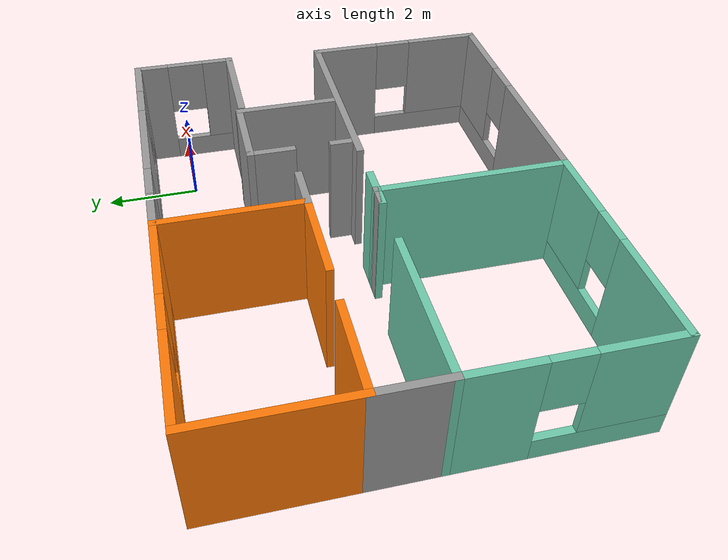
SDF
<?xml version='1.0'?>
<sdf version='1.6'>
  <model name='apartment'>
    <pose frame=''>-3.48039 -3.11301 0 0 -0 0</pose>
    <link name='Wall_0'>
      <collision name='Wall_0_Collision'>
        <geometry>
          <box>
            <size>3.25 0.15 2.5</size>
          </box>
        </geometry>
        <pose frame=''>0 0 1.25 0 -0 0</pose>
      </collision>
      <visual name='Wall_0_Visual'>
        <pose frame=''>0 0 1.25 0 -0 0</pose>
        <geometry>
          <box>
            <size>3.25 0.15 2.5</size>
          </box>
        </geometry>
        <material>
          <script>
            <uri>file://media/materials/scripts/gazebo.material</uri>
            <name>Gazebo/Grey</name>
          </script>
          <ambient>0.435294 0.796078 0.67451 1</ambient>
        </material>
        <meta>
          <layer>0</layer>
        </meta>
      </visual>
      <pose frame=''>-3.525 -0.175 0 0 -0 3.14159</pose>
    </link>
    <link name='Wall_1'>
      <pose frame=''>-5.075 -2.1 0 0 0 -1.5708</pose>
      <visual name='Wall_1_Visual_0'>
        <pose frame=''>-1.23469 0 1.25 0 -0 0</pose>
        <geometry>
          <box>
            <size>1.53062 0.15 2.5</size>
          </box>
        </geometry>
        <material>
          <script>
            <uri>file://media/materials/scripts/gazebo.material</uri>
            <name>Gazebo/Grey</name>
          </script>
          <ambient>0.435294 0.796078 0.67451 1</ambient>
        </material>
        <meta>
          <layer>0</layer>
        </meta>
      </visual>
      <collision name='Wall_1_Collision_0'>
        <geometry>
          <box>
            <size>1.53062 0.15 2.5</size>
          </box>
        </geometry>
        <pose frame=''>-1.23469 0 1.25 0 -0 0</pose>
      </collision>
      <visual name='Wall_1_Visual_1'>
        <pose frame=''>0.765309 0 0.25 0 -0 0</pose>
        <geometry>
          <box>
            <size>2.46938 0.15 0.5</size>
          </box>
        </geometry>
        <material>
          <script>
            <uri>file://media/materials/scripts/gazebo.material</uri>
            <name>Gazebo/Grey</name>
          </script>
          <ambient>0.435294 0.796078 0.67451 1</ambient>
        </material>
        <meta>
          <layer>0</layer>
        </meta>
      </visual>
      <collision name='Wall_1_Collision_1'>
        <geometry>
          <box>
            <size>2.46938 0.15 0.5</size>
          </box>
        </geometry>
        <pose frame=''>0.765309 0 0.25 0 -0 0</pose>
      </collision>
      <visual name='Wall_1_Visual_2'>
        <pose frame=''>1.16531 0 1.5 0 -0 0</pose>
        <geometry>
          <box>
            <size>1.66938 0.15 2</size>
          </box>
        </geometry>
        <material>
          <script>
            <uri>file://media/materials/scripts/gazebo.material</uri>
            <name>Gazebo/Grey</name>
          </script>
          <ambient>0.435294 0.796078 0.67451 1</ambient>
        </material>
        <meta>
          <layer>0</layer>
        </meta>
      </visual>
      <collision name='Wall_1_Collision_2'>
        <geometry>
          <box>
            <size>1.66938 0.15 2</size>
          </box>
        </geometry>
        <pose frame=''>1.16531 0 1.5 0 -0 0</pose>
      </collision>
      <visual name='Wall_1_Visual_3'>
        <pose frame=''>-0.069383 0 1.9 0 -0 0</pose>
        <geometry>
          <box>
            <size>0.8 0.15 1.2</size>
          </box>
        </geometry>
        <material>
          <script>
            <uri>file://media/materials/scripts/gazebo.material</uri>
            <name>Gazebo/Grey</name>
          </script>
          <ambient>0.435294 0.796078 0.67451 1</ambient>
        </material>
        <meta>
          <layer>0</layer>
        </meta>
      </visual>
      <collision name='Wall_1_Collision_3'>
        <geometry>
          <box>
            <size>0.8 0.15 1.2</size>
          </box>
        </geometry>
        <pose frame=''>-0.069383 0 1.9 0 -0 0</pose>
      </collision>
    </link>
    <link name='Wall_12'>
      <collision name='Wall_12_Collision'>
        <geometry>
          <box>
            <size>2.25 0.15 2.5</size>
          </box>
        </geometry>
        <pose frame=''>0 0 1.25 0 -0 0</pose>
      </collision>
      <visual name='Wall_12_Visual'>
        <pose frame=''>0 0 1.25 0 -0 0</pose>
        <geometry>
          <box>
            <size>2.25 0.15 2.5</size>
          </box>
        </geometry>
        <material>
          <script>
            <uri>file://media/materials/scripts/gazebo.material</uri>
            <name>Gazebo/Grey</name>
          </script>
          <ambient>1 1 1 1</ambient>
        </material>
        <meta>
          <layer>0</layer>
        </meta>
      </visual>
      <pose frame=''>2.80076 0.944198 0 0 -0 1.5708</pose>
    </link>
    <link name='Wall_13'>
      <collision name='Wall_13_Collision'>
        <geometry>
          <box>
            <size>1.75 0.15 2.5</size>
          </box>
        </geometry>
        <pose frame=''>0 0 1.25 0 -0 0</pose>
      </collision>
      <visual name='Wall_13_Visual'>
        <pose frame=''>0 0 1.25 0 -0 0</pose>
        <geometry>
          <box>
            <size>1.75 0.15 2.5</size>
          </box>
        </geometry>
        <material>
          <script>
            <uri>file://media/materials/scripts/gazebo.material</uri>
            <name>Gazebo/Grey</name>
          </script>
          <ambient>1 1 1 1</ambient>
        </material>
        <meta>
          <layer>0</layer>
        </meta>
      </visual>
      <pose frame=''>2.00075 1.9942 0 0 -0 3.14159</pose>
    </link>
    <link name='Wall_18'>
      <collision name='Wall_18_Collision'>
        <geometry>
          <box>
            <size>1.5 0.15 2.5</size>
          </box>
        </geometry>
        <pose frame=''>0 0 1.25 0 -0 0</pose>
      </collision>
      <visual name='Wall_18_Visual'>
        <pose frame=''>0 0 1.25 0 -0 0</pose>
        <geometry>
          <box>
            <size>1.5 0.15 2.5</size>
          </box>
        </geometry>
        <material>
          <script>
            <uri>file://media/materials/scripts/gazebo.material</uri>
            <name>Gazebo/Grey</name>
          </script>
          <ambient>1 1 1 1</ambient>
        </material>
        <meta>
          <layer>0</layer>
        </meta>
      </visual>
      <pose frame=''>-5.075 0.5 0 0 -0 1.5708</pose>
    </link>
    <link name='Wall_19'>
      <collision name='Wall_19_Collision'>
        <geometry>
          <box>
            <size>2 0.15 2.5</size>
          </box>
        </geometry>
        <pose frame=''>0 0 1.25 0 -0 0</pose>
      </collision>
      <visual name='Wall_19_Visual'>
        <pose frame=''>0 0 1.25 0 -0 0</pose>
        <geometry>
          <box>
            <size>2 0.15 2.5</size>
          </box>
        </geometry>
        <material>
          <script>
            <uri>file://media/materials/scripts/gazebo.material</uri>
            <name>Gazebo/Grey</name>
          </script>
          <ambient>0.996078 0.47451 0.0196078 1</ambient>
        </material>
        <meta>
          <layer>0</layer>
        </meta>
      </visual>
      <pose frame=''>-4.15 1.175 0 0 -0 0</pose>
    </link>
    <link name='Wall_2'>
      <pose frame=''>-2.775 -4.025 0 0 -0 0</pose>
      <visual name='Wall_2_Visual_0'>
        <pose frame=''>-1.21423 0 1.25 0 -0 0</pose>
        <geometry>
          <box>
            <size>2.32154 0.15 2.5</size>
          </box>
        </geometry>
        <material>
          <script>
            <uri>file://media/materials/scripts/gazebo.material</uri>
            <name>Gazebo/Grey</name>
          </script>
          <ambient>0.435294 0.796078 0.67451 1</ambient>
        </material>
        <meta>
          <layer>0</layer>
        </meta>
      </visual>
      <collision name='Wall_2_Collision_0'>
        <geometry>
          <box>
            <size>2.32154 0.15 2.5</size>
          </box>
        </geometry>
        <pose frame=''>-1.21423 0 1.25 0 -0 0</pose>
      </collision>
      <visual name='Wall_2_Visual_1'>
        <pose frame=''>1.16077 0 0.25 0 -0 0</pose>
        <geometry>
          <box>
            <size>2.42846 0.15 0.5</size>
          </box>
        </geometry>
        <material>
          <script>
            <uri>file://media/materials/scripts/gazebo.material</uri>
            <name>Gazebo/Grey</name>
          </script>
          <ambient>0.435294 0.796078 0.67451 1</ambient>
        </material>
        <meta>
          <layer>0</layer>
        </meta>
      </visual>
      <collision name='Wall_2_Collision_1'>
        <geometry>
          <box>
            <size>2.42846 0.15 0.5</size>
          </box>
        </geometry>
        <pose frame=''>1.16077 0 0.25 0 -0 0</pose>
      </collision>
      <visual name='Wall_2_Visual_2'>
        <pose frame=''>1.56077 0 1.5 0 -0 0</pose>
        <geometry>
          <box>
            <size>1.62846 0.15 2</size>
          </box>
        </geometry>
        <material>
          <script>
            <uri>file://media/materials/scripts/gazebo.material</uri>
            <name>Gazebo/Grey</name>
          </script>
          <ambient>0.435294 0.796078 0.67451 1</ambient>
        </material>
        <meta>
          <layer>0</layer>
        </meta>
      </visual>
      <collision name='Wall_2_Collision_2'>
        <geometry>
          <box>
            <size>1.62846 0.15 2</size>
          </box>
        </geometry>
        <pose frame=''>1.56077 0 1.5 0 -0 0</pose>
      </collision>
      <visual name='Wall_2_Visual_3'>
        <pose frame=''>0.346537 0 1.9 0 -0 0</pose>
        <geometry>
          <box>
            <size>0.8 0.15 1.2</size>
          </box>
        </geometry>
        <material>
          <script>
            <uri>file://media/materials/scripts/gazebo.material</uri>
            <name>Gazebo/Grey</name>
          </script>
          <ambient>0.435294 0.796078 0.67451 1</ambient>
        </material>
        <meta>
          <layer>0</layer>
        </meta>
      </visual>
      <collision name='Wall_2_Collision_3'>
        <geometry>
          <box>
            <size>0.8 0.15 1.2</size>
          </box>
        </geometry>
        <pose frame=''>0.346537 0 1.9 0 -0 0</pose>
      </collision>
    </link>
    <link name='Wall_21'>
      <collision name='Wall_21_Collision'>
        <geometry>
          <box>
            <size>2 0.15 2.5</size>
          </box>
        </geometry>
        <pose frame=''>0 0 1.25 0 -0 0</pose>
      </collision>
      <visual name='Wall_21_Visual'>
        <pose frame=''>0 0 1.25 0 -0 0</pose>
        <geometry>
          <box>
            <size>2 0.15 2.5</size>
          </box>
        </geometry>
        <material>
          <script>
            <uri>file://media/materials/scripts/gazebo.material</uri>
            <name>Gazebo/Grey</name>
          </script>
          <ambient>0.996078 0.47451 0.0196078 1</ambient>
        </material>
        <meta>
          <layer>0</layer>
        </meta>
      </visual>
      <pose frame=''>-1.45 1.175 0 0 -0 0</pose>
    </link>
    <link name='Wall_22'>
      <collision name='Wall_22_Collision'>
        <geometry>
          <box>
            <size>3 0.15 2.5</size>
          </box>
        </geometry>
        <pose frame=''>0 0 1.25 0 -0 0</pose>
      </collision>
      <visual name='Wall_22_Visual'>
        <pose frame=''>0 0 1.25 0 -0 0</pose>
        <geometry>
          <box>
            <size>3 0.15 2.5</size>
          </box>
        </geometry>
        <material>
          <script>
            <uri>file://media/materials/scripts/gazebo.material</uri>
            <name>Gazebo/Grey</name>
          </script>
          <ambient>0.996078 0.47451 0.0196078 1</ambient>
        </material>
        <meta>
          <layer>0</layer>
        </meta>
      </visual>
      <pose frame=''>-0.525 2.6 0 0 -0 1.5708</pose>
    </link>
    <link name='Wall_23'>
      <pose frame=''>2.275 4.025 0 0 -0 0</pose>
      <visual name='Wall_23_Visual_0'>
        <pose frame=''>-2.39764 0 1.25 0 -0 0</pose>
        <geometry>
          <box>
            <size>0.954728 0.15 2.5</size>
          </box>
        </geometry>
        <material>
          <script>
            <uri>file://media/materials/scripts/gazebo.material</uri>
            <name>Gazebo/Grey</name>
          </script>
          <ambient>1 1 1 1</ambient>
        </material>
        <meta>
          <layer>0</layer>
        </meta>
      </visual>
      <collision name='Wall_23_Collision_0'>
        <geometry>
          <box>
            <size>0.954728 0.15 2.5</size>
          </box>
        </geometry>
        <pose frame=''>-2.39764 0 1.25 0 -0 0</pose>
      </collision>
      <visual name='Wall_23_Visual_1'>
        <pose frame=''>0.477364 0 0.25 0 -0 0</pose>
        <geometry>
          <box>
            <size>4.79527 0.15 0.5</size>
          </box>
        </geometry>
        <material>
          <script>
            <uri>file://media/materials/scripts/gazebo.material</uri>
            <name>Gazebo/Grey</name>
          </script>
          <ambient>1 1 1 1</ambient>
        </material>
        <meta>
          <layer>0</layer>
        </meta>
      </visual>
      <collision name='Wall_23_Collision_1'>
        <geometry>
          <box>
            <size>4.79527 0.15 0.5</size>
          </box>
        </geometry>
        <pose frame=''>0.477364 0 0.25 0 -0 0</pose>
      </collision>
      <visual name='Wall_23_Visual_2'>
        <pose frame=''>-0.051107 0 1.5 0 -0 0</pose>
        <geometry>
          <box>
            <size>2.13833 0.15 2</size>
          </box>
        </geometry>
        <material>
          <script>
            <uri>file://media/materials/scripts/gazebo.material</uri>
            <name>Gazebo/Grey</name>
          </script>
          <ambient>1 1 1 1</ambient>
        </material>
        <meta>
          <layer>0</layer>
        </meta>
      </visual>
      <collision name='Wall_23_Collision_2'>
        <geometry>
          <box>
            <size>2.13833 0.15 2</size>
          </box>
        </geometry>
        <pose frame=''>-0.051107 0 1.5 0 -0 0</pose>
      </collision>
      <visual name='Wall_23_Visual_3'>
        <pose frame=''>2.34653 0 1.5 0 -0 0</pose>
        <geometry>
          <box>
            <size>1.05694 0.15 2</size>
          </box>
        </geometry>
        <material>
          <script>
            <uri>file://media/materials/scripts/gazebo.material</uri>
            <name>Gazebo/Grey</name>
          </script>
          <ambient>1 1 1 1</ambient>
        </material>
        <meta>
          <layer>0</layer>
        </meta>
      </visual>
      <collision name='Wall_23_Collision_3'>
        <geometry>
          <box>
            <size>1.05694 0.15 2</size>
          </box>
        </geometry>
        <pose frame=''>2.34653 0 1.5 0 -0 0</pose>
      </collision>
      <visual name='Wall_23_Visual_4'>
        <pose frame=''>-1.52027 0 1.9 0 -0 0</pose>
        <geometry>
          <box>
            <size>0.8 0.15 1.2</size>
          </box>
        </geometry>
        <material>
          <script>
            <uri>file://media/materials/scripts/gazebo.material</uri>
            <name>Gazebo/Grey</name>
          </script>
          <ambient>1 1 1 1</ambient>
        </material>
        <meta>
          <layer>0</layer>
        </meta>
      </visual>
      <collision name='Wall_23_Collision_4'>
        <geometry>
          <box>
            <size>0.8 0.15 1.2</size>
          </box>
        </geometry>
        <pose frame=''>-1.52027 0 1.9 0 -0 0</pose>
      </collision>
      <visual name='Wall_23_Visual_5'>
        <pose frame=''>1.41806 0 1.9 0 -0 0</pose>
        <geometry>
          <box>
            <size>0.8 0.15 1.2</size>
          </box>
        </geometry>
        <material>
          <script>
            <uri>file://media/materials/scripts/gazebo.material</uri>
            <name>Gazebo/Grey</name>
          </script>
          <ambient>1 1 1 1</ambient>
        </material>
        <meta>
          <layer>0</layer>
        </meta>
      </visual>
      <collision name='Wall_23_Collision_5'>
        <geometry>
          <box>
            <size>0.8 0.15 1.2</size>
          </box>
        </geometry>
        <pose frame=''>1.41806 0 1.9 0 -0 0</pose>
      </collision>
    </link>
    <link name='Wall_24'>
      <pose frame=''>5.075 2.975 0 0 0 -1.5708</pose>
      <visual name='Wall_24_Visual_0'>
        <pose frame=''>-0.752025 0 1.25 0 -0 0</pose>
        <geometry>
          <box>
            <size>0.74595 0.15 2.5</size>
          </box>
        </geometry>
        <material>
          <script>
            <uri>file://media/materials/scripts/gazebo.material</uri>
            <name>Gazebo/Grey</name>
          </script>
          <ambient>1 1 1 1</ambient>
        </material>
        <meta>
          <layer>0</layer>
        </meta>
      </visual>
      <collision name='Wall_24_Collision_0'>
        <geometry>
          <box>
            <size>0.74595 0.15 2.5</size>
          </box>
        </geometry>
        <pose frame=''>-0.752025 0 1.25 0 -0 0</pose>
      </collision>
      <visual name='Wall_24_Visual_1'>
        <pose frame=''>0.372975 0 0.25 0 -0 0</pose>
        <geometry>
          <box>
            <size>1.50405 0.15 0.5</size>
          </box>
        </geometry>
        <material>
          <script>
            <uri>file://media/materials/scripts/gazebo.material</uri>
            <name>Gazebo/Grey</name>
          </script>
          <ambient>1 1 1 1</ambient>
        </material>
        <meta>
          <layer>0</layer>
        </meta>
      </visual>
      <collision name='Wall_24_Collision_1'>
        <geometry>
          <box>
            <size>1.50405 0.15 0.5</size>
          </box>
        </geometry>
        <pose frame=''>0.372975 0 0.25 0 -0 0</pose>
      </collision>
      <visual name='Wall_24_Visual_2'>
        <pose frame=''>0.772975 0 1.5 0 -0 0</pose>
        <geometry>
          <box>
            <size>0.70405 0.15 2</size>
          </box>
        </geometry>
        <material>
          <script>
            <uri>file://media/materials/scripts/gazebo.material</uri>
            <name>Gazebo/Grey</name>
          </script>
          <ambient>1 1 1 1</ambient>
        </material>
        <meta>
          <layer>0</layer>
        </meta>
      </visual>
      <collision name='Wall_24_Collision_2'>
        <geometry>
          <box>
            <size>0.70405 0.15 2</size>
          </box>
        </geometry>
        <pose frame=''>0.772975 0 1.5 0 -0 0</pose>
      </collision>
      <visual name='Wall_24_Visual_3'>
        <pose frame=''>0.02095 0 1.9 0 -0 0</pose>
        <geometry>
          <box>
            <size>0.8 0.15 1.2</size>
          </box>
        </geometry>
        <material>
          <script>
            <uri>file://media/materials/scripts/gazebo.material</uri>
            <name>Gazebo/Grey</name>
          </script>
          <ambient>1 1 1 1</ambient>
        </material>
        <meta>
          <layer>0</layer>
        </meta>
      </visual>
      <collision name='Wall_24_Collision_3'>
        <geometry>
          <box>
            <size>0.8 0.15 1.2</size>
          </box>
        </geometry>
        <pose frame=''>0.02095 0 1.9 0 -0 0</pose>
      </collision>
    </link>
    <link name='Wall_25'>
      <collision name='Wall_25_Collision'>
        <geometry>
          <box>
            <size>2.25 0.15 2.5</size>
          </box>
        </geometry>
        <pose frame=''>0 0 1.25 0 -0 0</pose>
      </collision>
      <visual name='Wall_25_Visual'>
        <pose frame=''>0 0 1.25 0 -0 0</pose>
        <geometry>
          <box>
            <size>2.25 0.15 2.5</size>
          </box>
        </geometry>
        <material>
          <script>
            <uri>file://media/materials/scripts/gazebo.material</uri>
            <name>Gazebo/Grey</name>
          </script>
          <ambient>1 1 1 1</ambient>
        </material>
        <meta>
          <layer>0</layer>
        </meta>
      </visual>
      <pose frame=''>4.025 1.925 0 0 -0 3.14159</pose>
    </link>
    <link name='Wall_27'>
      <collision name='Wall_27_Collision'>
        <geometry>
          <box>
            <size>1 0.15 2.5</size>
          </box>
        </geometry>
        <pose frame=''>0 0 1.25 0 -0 0</pose>
      </collision>
      <visual name='Wall_27_Visual'>
        <pose frame=''>0 0 1.25 0 -0 0</pose>
        <geometry>
          <box>
            <size>1 0.15 2.5</size>
          </box>
        </geometry>
        <material>
          <script>
            <uri>file://media/materials/scripts/gazebo.material</uri>
            <name>Gazebo/Grey</name>
          </script>
          <ambient>1 1 1 1</ambient>
        </material>
        <meta>
          <layer>0</layer>
        </meta>
      </visual>
      <pose frame=''>-0.1 1.175 0 0 -0 0</pose>
    </link>
    <link name='Wall_29'>
      <collision name='Wall_29_Collision'>
        <geometry>
          <box>
            <size>3 0.15 2.5</size>
          </box>
        </geometry>
        <pose frame=''>0 0 1.25 0 -0 0</pose>
      </collision>
      <visual name='Wall_29_Visual'>
        <pose frame=''>0 0 1.25 0 -0 0</pose>
        <geometry>
          <box>
            <size>3 0.15 2.5</size>
          </box>
        </geometry>
        <material>
          <script>
            <uri>file://media/materials/scripts/gazebo.material</uri>
            <name>Gazebo/Grey</name>
          </script>
          <ambient>0.996078 0.47451 0.0196078 1</ambient>
        </material>
        <meta>
          <layer>0</layer>
        </meta>
      </visual>
      <pose frame=''>-5.075 2.6 0 0 -0 1.5708</pose>
    </link>
    <link name='Wall_3'>
      <collision name='Wall_3_Collision'>
        <geometry>
          <box>
            <size>4 0.15 2.5</size>
          </box>
        </geometry>
        <pose frame=''>0 0 1.25 0 -0 0</pose>
      </collision>
      <visual name='Wall_3_Visual'>
        <pose frame=''>0 0 1.25 0 -0 0</pose>
        <geometry>
          <box>
            <size>4 0.15 2.5</size>
          </box>
        </geometry>
        <material>
          <script>
            <uri>file://media/materials/scripts/gazebo.material</uri>
            <name>Gazebo/Grey</name>
          </script>
          <ambient>0.435294 0.796078 0.67451 1</ambient>
        </material>
        <meta>
          <layer>0</layer>
        </meta>
      </visual>
      <pose frame=''>-0.475 -2.1 0 0 -0 1.5708</pose>
    </link>
    <link name='Wall_30'>
      <pose frame=''>-2.8 4.025 0 0 -0 0</pose>
      <visual name='Wall_30_Visual_0'>
        <pose frame=''>-1.35539 0 1.25 0 -0 0</pose>
        <geometry>
          <box>
            <size>1.98923 0.15 2.5</size>
          </box>
        </geometry>
        <material>
          <script>
            <uri>file://media/materials/scripts/gazebo.material</uri>
            <name>Gazebo/Grey</name>
          </script>
          <ambient>0.996078 0.47451 0.0196078 1</ambient>
        </material>
        <meta>
          <layer>0</layer>
        </meta>
      </visual>
      <collision name='Wall_30_Collision_0'>
        <geometry>
          <box>
            <size>1.98923 0.15 2.5</size>
          </box>
        </geometry>
        <pose frame=''>-1.35539 0 1.25 0 -0 0</pose>
      </collision>
      <visual name='Wall_30_Visual_1'>
        <pose frame=''>0.994613 0 0.25 0 -0 0</pose>
        <geometry>
          <box>
            <size>2.71077 0.15 0.5</size>
          </box>
        </geometry>
        <material>
          <script>
            <uri>file://media/materials/scripts/gazebo.material</uri>
            <name>Gazebo/Grey</name>
          </script>
          <ambient>0.996078 0.47451 0.0196078 1</ambient>
        </material>
        <meta>
          <layer>0</layer>
        </meta>
      </visual>
      <collision name='Wall_30_Collision_1'>
        <geometry>
          <box>
            <size>2.71077 0.15 0.5</size>
          </box>
        </geometry>
        <pose frame=''>0.994613 0 0.25 0 -0 0</pose>
      </collision>
      <visual name='Wall_30_Visual_2'>
        <pose frame=''>1.39461 0 1.5 0 -0 0</pose>
        <geometry>
          <box>
            <size>1.91077 0.15 2</size>
          </box>
        </geometry>
        <material>
          <script>
            <uri>file://media/materials/scripts/gazebo.material</uri>
            <name>Gazebo/Grey</name>
          </script>
          <ambient>0.996078 0.47451 0.0196078 1</ambient>
        </material>
        <meta>
          <layer>0</layer>
        </meta>
      </visual>
      <collision name='Wall_30_Collision_2'>
        <geometry>
          <box>
            <size>1.91077 0.15 2</size>
          </box>
        </geometry>
        <pose frame=''>1.39461 0 1.5 0 -0 0</pose>
      </collision>
      <visual name='Wall_30_Visual_3'>
        <pose frame=''>0.039225 0 1.9 0 -0 0</pose>
        <geometry>
          <box>
            <size>0.8 0.15 1.2</size>
          </box>
        </geometry>
        <material>
          <script>
            <uri>file://media/materials/scripts/gazebo.material</uri>
            <name>Gazebo/Grey</name>
          </script>
          <ambient>0.996078 0.47451 0.0196078 1</ambient>
        </material>
        <meta>
          <layer>0</layer>
        </meta>
      </visual>
      <collision name='Wall_30_Collision_3'>
        <geometry>
          <box>
            <size>0.8 0.15 1.2</size>
          </box>
        </geometry>
        <pose frame=''>0.039225 0 1.9 0 -0 0</pose>
      </collision>
    </link>
    <link name='Wall_33'>
      <collision name='Wall_33_Collision'>
        <geometry>
          <box>
            <size>4.25 0.15 2.5</size>
          </box>
        </geometry>
        <pose frame=''>0 0 1.25 0 -0 0</pose>
      </collision>
      <visual name='Wall_33_Visual'>
        <pose frame=''>0 0 1.25 0 -0 0</pose>
        <geometry>
          <box>
            <size>4.25 0.15 2.5</size>
          </box>
        </geometry>
        <material>
          <script>
            <uri>file://media/materials/scripts/gazebo.material</uri>
            <name>Gazebo/Grey</name>
          </script>
          <ambient>1 1 1 1</ambient>
        </material>
        <meta>
          <layer>0</layer>
        </meta>
      </visual>
      <pose frame=''>2.925 -0.175 0 0 -0 0</pose>
    </link>
    <link name='Wall_34'>
      <pose frame=''>4.975 -2.1 0 0 0 -1.5708</pose>
      <visual name='Wall_34_Visual_0'>
        <pose frame=''>-1.23469 0 1.25 0 -0 0</pose>
        <geometry>
          <box>
            <size>1.53062 0.15 2.5</size>
          </box>
        </geometry>
        <material>
          <script>
            <uri>file://media/materials/scripts/gazebo.material</uri>
            <name>Gazebo/Grey</name>
          </script>
          <ambient>1 1 1 1</ambient>
        </material>
        <meta>
          <layer>0</layer>
        </meta>
      </visual>
      <collision name='Wall_34_Collision_0'>
        <geometry>
          <box>
            <size>1.53062 0.15 2.5</size>
          </box>
        </geometry>
        <pose frame=''>-1.23469 0 1.25 0 -0 0</pose>
      </collision>
      <visual name='Wall_34_Visual_1'>
        <pose frame=''>0.765309 0 0.25 0 -0 0</pose>
        <geometry>
          <box>
            <size>2.46938 0.15 0.5</size>
          </box>
        </geometry>
        <material>
          <script>
            <uri>file://media/materials/scripts/gazebo.material</uri>
            <name>Gazebo/Grey</name>
          </script>
          <ambient>1 1 1 1</ambient>
        </material>
        <meta>
          <layer>0</layer>
        </meta>
      </visual>
      <collision name='Wall_34_Collision_1'>
        <geometry>
          <box>
            <size>2.46938 0.15 0.5</size>
          </box>
        </geometry>
        <pose frame=''>0.765309 0 0.25 0 -0 0</pose>
      </collision>
      <visual name='Wall_34_Visual_2'>
        <pose frame=''>1.16531 0 1.5 0 -0 0</pose>
        <geometry>
          <box>
            <size>1.66938 0.15 2</size>
          </box>
        </geometry>
        <material>
          <script>
            <uri>file://media/materials/scripts/gazebo.material</uri>
            <name>Gazebo/Grey</name>
          </script>
          <ambient>1 1 1 1</ambient>
        </material>
        <meta>
          <layer>0</layer>
        </meta>
      </visual>
      <collision name='Wall_34_Collision_2'>
        <geometry>
          <box>
            <size>1.66938 0.15 2</size>
          </box>
        </geometry>
        <pose frame=''>1.16531 0 1.5 0 -0 0</pose>
      </collision>
      <visual name='Wall_34_Visual_3'>
        <pose frame=''>-0.069383 0 1.9 0 -0 0</pose>
        <geometry>
          <box>
            <size>0.8 0.15 1.2</size>
          </box>
        </geometry>
        <material>
          <script>
            <uri>file://media/materials/scripts/gazebo.material</uri>
            <name>Gazebo/Grey</name>
          </script>
          <ambient>1 1 1 1</ambient>
        </material>
        <meta>
          <layer>0</layer>
        </meta>
      </visual>
      <collision name='Wall_34_Collision_3'>
        <geometry>
          <box>
            <size>0.8 0.15 1.2</size>
          </box>
        </geometry>
        <pose frame=''>-0.069383 0 1.9 0 -0 0</pose>
      </collision>
    </link>
    <link name='Wall_36'>
      <collision name='Wall_36_Collision'>
        <geometry>
          <box>
            <size>1 0.15 2.5</size>
          </box>
        </geometry>
        <pose frame=''>0 0 1.25 0 -0 0</pose>
      </collision>
      <visual name='Wall_36_Visual'>
        <pose frame=''>0 0 1.25 0 -0 0</pose>
        <geometry>
          <box>
            <size>1 0.15 2.5</size>
          </box>
        </geometry>
        <material>
          <script>
            <uri>file://media/materials/scripts/gazebo.material</uri>
            <name>Gazebo/Grey</name>
          </script>
          <ambient>1 1 1 1</ambient>
        </material>
        <meta>
          <layer>0</layer>
        </meta>
      </visual>
      <pose frame=''>1.20076 1.5692 0 0 0 -1.5708</pose>
    </link>
    <link name='Wall_38'>
      <collision name='Wall_38_Collision'>
        <geometry>
          <box>
            <size>0.5 0.15 2.5</size>
          </box>
        </geometry>
        <pose frame=''>0 0 1.25 0 -0 0</pose>
      </collision>
      <visual name='Wall_38_Visual'>
        <pose frame=''>0 0 1.25 0 -0 0</pose>
        <geometry>
          <box>
            <size>0.5 0.15 2.5</size>
          </box>
        </geometry>
        <material>
          <script>
            <uri>file://media/materials/scripts/gazebo.material</uri>
            <name>Gazebo/Grey</name>
          </script>
          <ambient>1 1 1 1</ambient>
        </material>
        <meta>
          <layer>0</layer>
        </meta>
      </visual>
      <pose frame=''>1.20076 0.119198 0 0 0 -1.5708</pose>
    </link>
    <link name='Wall_4'>
      <collision name='Wall_4_Collision'>
        <geometry>
          <box>
            <size>0.484791 0.15 2.5</size>
          </box>
        </geometry>
        <pose frame=''>0 0 1.25 0 -0 0</pose>
      </collision>
      <visual name='Wall_4_Visual'>
        <pose frame=''>0 0 1.25 0 -0 0</pose>
        <geometry>
          <box>
            <size>0.484791 0.15 2.5</size>
          </box>
        </geometry>
        <material>
          <script>
            <uri>file://media/materials/scripts/gazebo.material</uri>
            <name>Gazebo/Grey</name>
          </script>
          <ambient>1 1 1 1</ambient>
        </material>
        <meta>
          <layer>0</layer>
        </meta>
      </visual>
      <pose frame=''>-0.642396 -0.175 0 0 -0 3.14159</pose>
    </link>
    <link name='Wall_5'>
      <collision name='Wall_5_Collision'>
        <geometry>
          <box>
            <size>1 0.15 2.5</size>
          </box>
        </geometry>
        <pose frame=''>0 0 1.25 0 -0 0</pose>
      </collision>
      <visual name='Wall_5_Visual'>
        <pose frame=''>0 0 1.25 0 -0 0</pose>
        <geometry>
          <box>
            <size>1 0.15 2.5</size>
          </box>
        </geometry>
        <material>
          <script>
            <uri>file://media/materials/scripts/gazebo.material</uri>
            <name>Gazebo/Grey</name>
          </script>
          <ambient>0.435294 0.796078 0.67451 1</ambient>
        </material>
        <meta>
          <layer>0</layer>
        </meta>
      </visual>
      <pose frame=''>-0.415209 -0.175 0 0 -0 0</pose>
    </link>
    <link name='Wall_7'>
      <pose frame=''>2.2 -4.025 0 0 -0 0</pose>
      <visual name='Wall_7_Visual_0'>
        <pose frame=''>-1.23074 0 1.25 0 -0 0</pose>
        <geometry>
          <box>
            <size>3.03851 0.15 2.5</size>
          </box>
        </geometry>
        <material>
          <script>
            <uri>file://media/materials/scripts/gazebo.material</uri>
            <name>Gazebo/Grey</name>
          </script>
          <ambient>1 1 1 1</ambient>
        </material>
        <meta>
          <layer>0</layer>
        </meta>
      </visual>
      <collision name='Wall_7_Collision_0'>
        <geometry>
          <box>
            <size>3.03851 0.15 2.5</size>
          </box>
        </geometry>
        <pose frame=''>-1.23074 0 1.25 0 -0 0</pose>
      </collision>
      <visual name='Wall_7_Visual_1'>
        <pose frame=''>1.51926 0 0.25 0 -0 0</pose>
        <geometry>
          <box>
            <size>2.46149 0.15 0.5</size>
          </box>
        </geometry>
        <material>
          <script>
            <uri>file://media/materials/scripts/gazebo.material</uri>
            <name>Gazebo/Grey</name>
          </script>
          <ambient>1 1 1 1</ambient>
        </material>
        <meta>
          <layer>0</layer>
        </meta>
      </visual>
      <collision name='Wall_7_Collision_1'>
        <geometry>
          <box>
            <size>2.46149 0.15 0.5</size>
          </box>
        </geometry>
        <pose frame=''>1.51926 0 0.25 0 -0 0</pose>
      </collision>
      <visual name='Wall_7_Visual_2'>
        <pose frame=''>1.91926 0 1.5 0 -0 0</pose>
        <geometry>
          <box>
            <size>1.66149 0.15 2</size>
          </box>
        </geometry>
        <material>
          <script>
            <uri>file://media/materials/scripts/gazebo.material</uri>
            <name>Gazebo/Grey</name>
          </script>
          <ambient>1 1 1 1</ambient>
        </material>
        <meta>
          <layer>0</layer>
        </meta>
      </visual>
      <collision name='Wall_7_Collision_2'>
        <geometry>
          <box>
            <size>1.66149 0.15 2</size>
          </box>
        </geometry>
        <pose frame=''>1.91926 0 1.5 0 -0 0</pose>
      </collision>
      <visual name='Wall_7_Visual_3'>
        <pose frame=''>0.688515 0 1.9 0 -0 0</pose>
        <geometry>
          <box>
            <size>0.8 0.15 1.2</size>
          </box>
        </geometry>
        <material>
          <script>
            <uri>file://media/materials/scripts/gazebo.material</uri>
            <name>Gazebo/Grey</name>
          </script>
          <ambient>1 1 1 1</ambient>
        </material>
        <meta>
          <layer>0</layer>
        </meta>
      </visual>
      <collision name='Wall_7_Collision_3'>
        <geometry>
          <box>
            <size>0.8 0.15 1.2</size>
          </box>
        </geometry>
        <pose frame=''>0.688515 0 1.9 0 -0 0</pose>
      </collision>
    </link>
    <static>1</static>
  </model>
</sdf>
